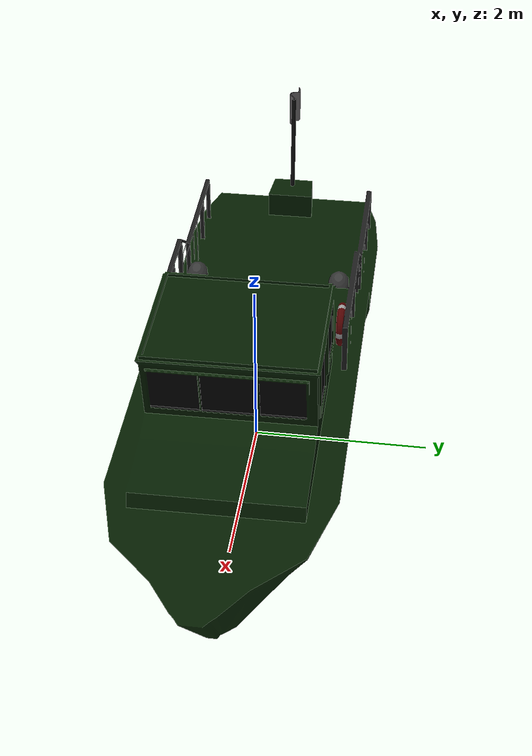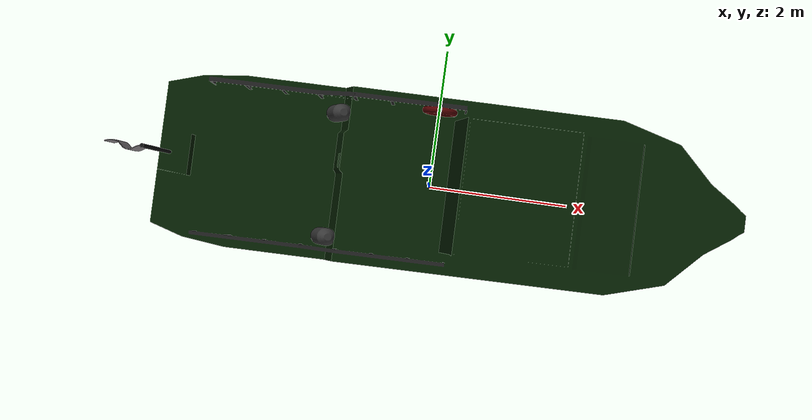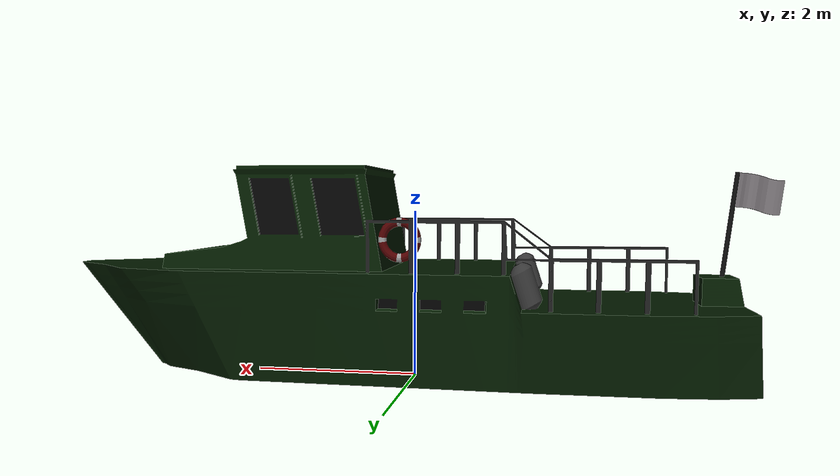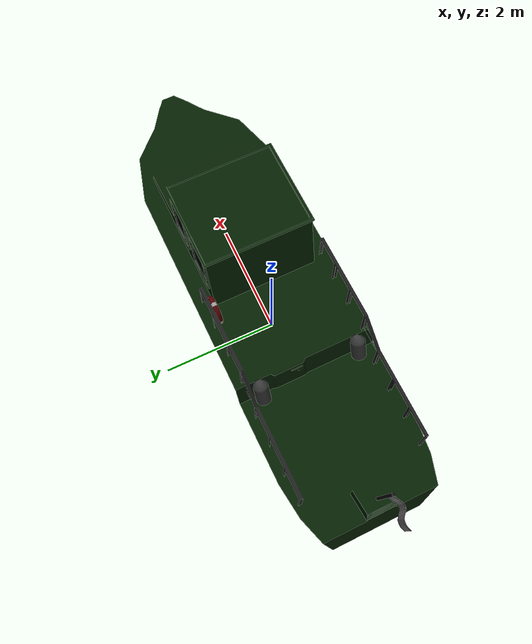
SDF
<?xml version="1.0"?>
<sdf version="1.5">
  <model name="aquabot_greenboat">
    <static>true</static>
    <link name="link">
      <visual name="visual">
        <pose>0.0 0.0 0.0 0 0 0 </pose>
        <geometry>
          <mesh>
            <uri>mesh/greenboat.dae</uri>
          </mesh>
        </geometry>
      </visual>
    </link>
  </model>
</sdf>
